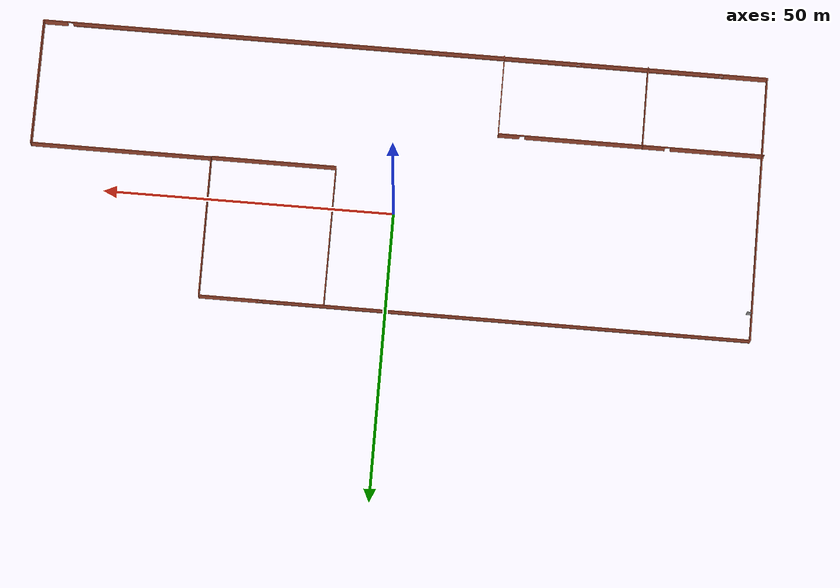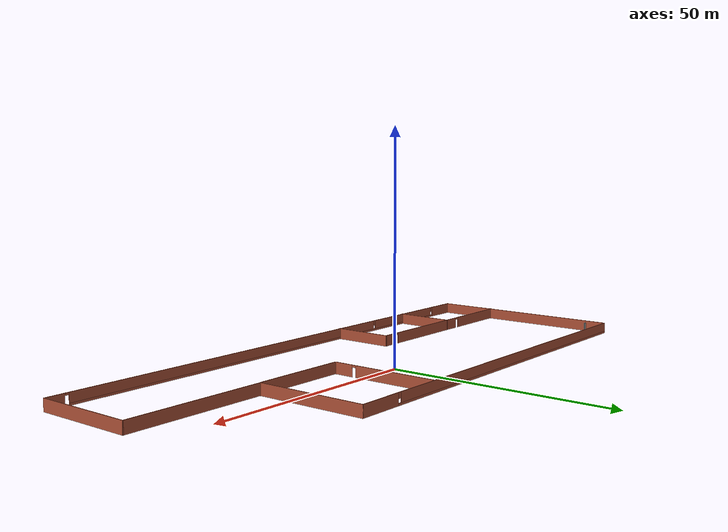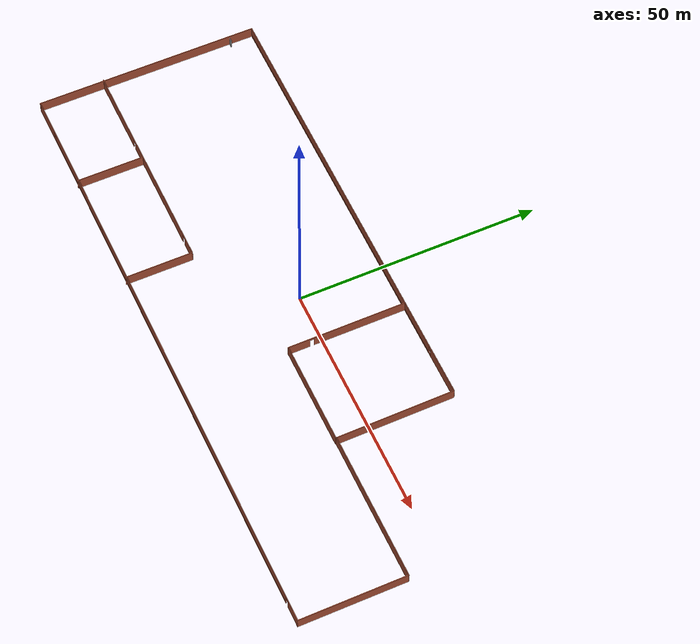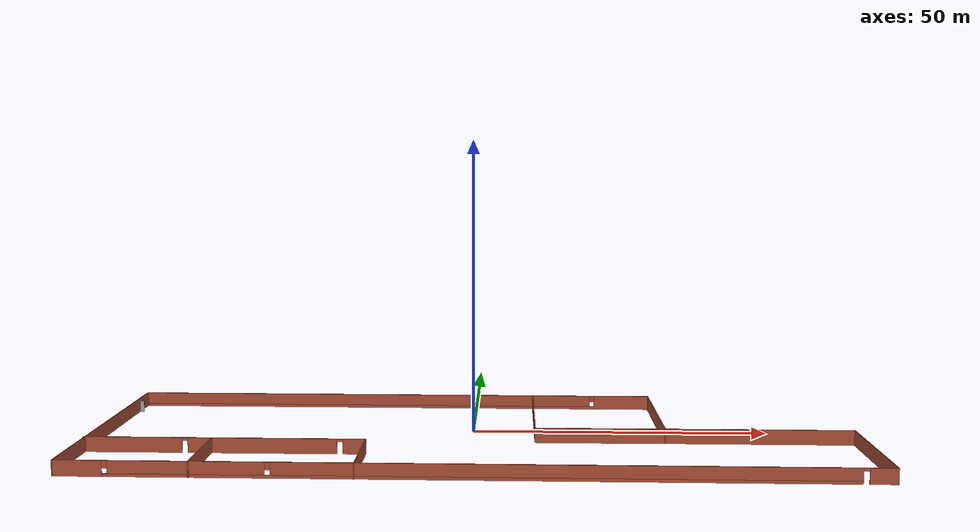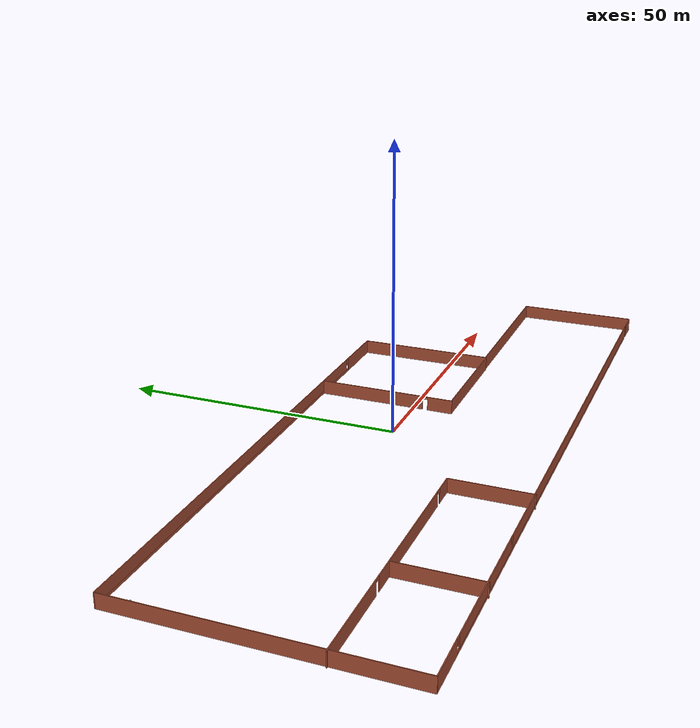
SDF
<?xml version='1.0'?>
<sdf version='1.6'>
  <model name='offi'>
    <pose frame=''>0.300907 -5.8245 0 0 -0 0</pose>
    <link name='Door_3'>
      <collision name='Door_3_Collision'>
        <geometry>
          <box>
            <size>0.9 0.17 2</size>
          </box>
        </geometry>
        <pose frame=''>0 0 1 0 -0 0</pose>
      </collision>
      <visual name='Door_3_Visual'>
        <pose frame=''>0 0 1 0 -0 0</pose>
        <geometry>
          <box>
            <size>0.9 0.17 2</size>
          </box>
        </geometry>
        <material>
          <script>
            <uri>file://media/materials/scripts/gazebo.material</uri>
            <name>Gazebo/Grey</name>
          </script>
        </material>
      </visual>
      <pose frame=''>-62.1497 18.2254 0 0 -0 0</pose>
    </link>
    <link name='Wall_1'>
      <pose frame=''>-15.4952 23.149 0 0 -0 3.14159</pose>
      <visual name='Wall_1_Visual_0'>
        <pose frame=''>-42.0881 0 1.25 0 -0 0</pose>
        <geometry>
          <box>
            <size>10.0738 0.15 2.5</size>
          </box>
        </geometry>
        <material>
          <script>
            <uri>file://media/materials/scripts/gazebo.material</uri>
            <name>Gazebo/Bricks</name>
          </script>
          <ambient>1 1 1 1</ambient>
        </material>
        <meta>
          <layer>0</layer>
        </meta>
      </visual>
      <collision name='Wall_1_Collision_0'>
        <geometry>
          <box>
            <size>10.0738 0.15 2.5</size>
          </box>
        </geometry>
        <pose frame=''>-42.0881 0 1.25 0 -0 0</pose>
      </collision>
      <visual name='Wall_1_Visual_1'>
        <pose frame=''>5.0369 0 0.25 0 -0 0</pose>
        <geometry>
          <box>
            <size>84.1762 0.15 0.5</size>
          </box>
        </geometry>
        <material>
          <script>
            <uri>file://media/materials/scripts/gazebo.material</uri>
            <name>Gazebo/Bricks</name>
          </script>
          <ambient>1 1 1 1</ambient>
        </material>
        <meta>
          <layer>0</layer>
        </meta>
      </visual>
      <collision name='Wall_1_Collision_1'>
        <geometry>
          <box>
            <size>84.1762 0.15 0.5</size>
          </box>
        </geometry>
        <pose frame=''>5.0369 0 0.25 0 -0 0</pose>
      </collision>
      <visual name='Wall_1_Visual_2'>
        <pose frame=''>5.4369 0 1.5 0 -0 0</pose>
        <geometry>
          <box>
            <size>83.3762 0.15 2</size>
          </box>
        </geometry>
        <material>
          <script>
            <uri>file://media/materials/scripts/gazebo.material</uri>
            <name>Gazebo/Bricks</name>
          </script>
          <ambient>1 1 1 1</ambient>
        </material>
        <meta>
          <layer>0</layer>
        </meta>
      </visual>
      <collision name='Wall_1_Collision_2'>
        <geometry>
          <box>
            <size>83.3762 0.15 2</size>
          </box>
        </geometry>
        <pose frame=''>5.4369 0 1.5 0 -0 0</pose>
      </collision>
      <visual name='Wall_1_Visual_3'>
        <pose frame=''>-36.6512 0 1.9 0 -0 0</pose>
        <geometry>
          <box>
            <size>0.8 0.15 1.2</size>
          </box>
        </geometry>
        <material>
          <script>
            <uri>file://media/materials/scripts/gazebo.material</uri>
            <name>Gazebo/Bricks</name>
          </script>
          <ambient>1 1 1 1</ambient>
        </material>
        <meta>
          <layer>0</layer>
        </meta>
      </visual>
      <collision name='Wall_1_Collision_3'>
        <geometry>
          <box>
            <size>0.8 0.15 1.2</size>
          </box>
        </geometry>
        <pose frame=''>-36.6512 0 1.9 0 -0 0</pose>
      </collision>
    </link>
    <link name='Wall_14'>
      <pose frame=''>-29.5298 -9.29942 0 0 -0 0</pose>
      <visual name='Wall_14_Visual_0'>
        <pose frame=''>-2.32675 0 1.25 0 -0 0</pose>
        <geometry>
          <box>
            <size>20.3465 0.15 2.5</size>
          </box>
        </geometry>
        <material>
          <script>
            <uri>file://media/materials/scripts/gazebo.material</uri>
            <name>Gazebo/Bricks</name>
          </script>
          <ambient>1 1 1 1</ambient>
        </material>
        <meta>
          <layer>0</layer>
        </meta>
      </visual>
      <collision name='Wall_14_Collision_0'>
        <geometry>
          <box>
            <size>20.3465 0.15 2.5</size>
          </box>
        </geometry>
        <pose frame=''>-2.32675 0 1.25 0 -0 0</pose>
      </collision>
      <visual name='Wall_14_Visual_1'>
        <pose frame=''>10.6233 0 1.25 0 -0 0</pose>
        <geometry>
          <box>
            <size>3.7535 0.15 2.5</size>
          </box>
        </geometry>
        <material>
          <script>
            <uri>file://media/materials/scripts/gazebo.material</uri>
            <name>Gazebo/Bricks</name>
          </script>
          <ambient>1 1 1 1</ambient>
        </material>
        <meta>
          <layer>0</layer>
        </meta>
      </visual>
      <collision name='Wall_14_Collision_1'>
        <geometry>
          <box>
            <size>3.7535 0.15 2.5</size>
          </box>
        </geometry>
        <pose frame=''>10.6233 0 1.25 0 -0 0</pose>
      </collision>
      <visual name='Wall_14_Visual_2'>
        <pose frame=''>8.2965 0 2.25 0 -0 0</pose>
        <geometry>
          <box>
            <size>0.9 0.15 0.5</size>
          </box>
        </geometry>
        <material>
          <script>
            <uri>file://media/materials/scripts/gazebo.material</uri>
            <name>Gazebo/Bricks</name>
          </script>
          <ambient>1 1 1 1</ambient>
        </material>
        <meta>
          <layer>0</layer>
        </meta>
      </visual>
      <collision name='Wall_14_Collision_2'>
        <geometry>
          <box>
            <size>0.9 0.15 0.5</size>
          </box>
        </geometry>
        <pose frame=''>8.2965 0 2.25 0 -0 0</pose>
      </collision>
    </link>
    <link name='Wall_15'>
      <collision name='Wall_15_Collision'>
        <geometry>
          <box>
            <size>14 0.15 2.5</size>
          </box>
        </geometry>
        <pose frame=''>0 0 1.25 0 -0 0</pose>
      </collision>
      <visual name='Wall_15_Visual'>
        <pose frame=''>0 0 1.25 0 -0 0</pose>
        <geometry>
          <box>
            <size>14 0.15 2.5</size>
          </box>
        </geometry>
        <material>
          <script>
            <uri>file://media/materials/scripts/gazebo.material</uri>
            <name>Gazebo/Bricks</name>
          </script>
          <ambient>1 1 1 1</ambient>
        </material>
        <meta>
          <layer>0</layer>
        </meta>
      </visual>
      <pose frame=''>-17.1048 -16.2244 0 0 0 -1.5708</pose>
    </link>
    <link name='Wall_17'>
      <pose frame=''>10.1813 10.9634 0 0 0 -1.5708</pose>
      <visual name='Wall_17_Visual_0'>
        <pose frame=''>-2.69786 0 1.25 0 -0 0</pose>
        <geometry>
          <box>
            <size>19.1043 0.15 2.5</size>
          </box>
        </geometry>
        <material>
          <script>
            <uri>file://media/materials/scripts/gazebo.material</uri>
            <name>Gazebo/Bricks</name>
          </script>
          <ambient>1 1 1 1</ambient>
        </material>
        <meta>
          <layer>0</layer>
        </meta>
      </visual>
      <collision name='Wall_17_Collision_0'>
        <geometry>
          <box>
            <size>19.1043 0.15 2.5</size>
          </box>
        </geometry>
        <pose frame=''>-2.69786 0 1.25 0 -0 0</pose>
      </collision>
      <visual name='Wall_17_Visual_1'>
        <pose frame=''>10.0021 0 1.25 0 -0 0</pose>
        <geometry>
          <box>
            <size>4.49571 0.15 2.5</size>
          </box>
        </geometry>
        <material>
          <script>
            <uri>file://media/materials/scripts/gazebo.material</uri>
            <name>Gazebo/Bricks</name>
          </script>
          <ambient>1 1 1 1</ambient>
        </material>
        <meta>
          <layer>0</layer>
        </meta>
      </visual>
      <collision name='Wall_17_Collision_1'>
        <geometry>
          <box>
            <size>4.49571 0.15 2.5</size>
          </box>
        </geometry>
        <pose frame=''>10.0021 0 1.25 0 -0 0</pose>
      </collision>
      <visual name='Wall_17_Visual_2'>
        <pose frame=''>7.30429 0 2.25 0 -0 0</pose>
        <geometry>
          <box>
            <size>0.9 0.15 0.5</size>
          </box>
        </geometry>
        <material>
          <script>
            <uri>file://media/materials/scripts/gazebo.material</uri>
            <name>Gazebo/Bricks</name>
          </script>
          <ambient>1 1 1 1</ambient>
        </material>
        <meta>
          <layer>0</layer>
        </meta>
      </visual>
      <collision name='Wall_17_Collision_2'>
        <geometry>
          <box>
            <size>0.9 0.15 0.5</size>
          </box>
        </geometry>
        <pose frame=''>7.30429 0 2.25 0 -0 0</pose>
      </collision>
    </link>
    <link name='Wall_18'>
      <collision name='Wall_18_Collision'>
        <geometry>
          <box>
            <size>21.5 0.15 2.5</size>
          </box>
        </geometry>
        <pose frame=''>0 0 1.25 0 -0 0</pose>
      </collision>
      <visual name='Wall_18_Visual'>
        <pose frame=''>0 0 1.25 0 -0 0</pose>
        <geometry>
          <box>
            <size>21.5 0.15 2.5</size>
          </box>
        </geometry>
        <material>
          <script>
            <uri>file://media/materials/scripts/gazebo.material</uri>
            <name>Gazebo/Bricks</name>
          </script>
          <ambient>1 1 1 1</ambient>
        </material>
        <meta>
          <layer>0</layer>
        </meta>
      </visual>
      <pose frame=''>20.8563 -1.21156 0 0 -0 0</pose>
    </link>
    <link name='Wall_2'>
      <collision name='Wall_2_Collision'>
        <geometry>
          <box>
            <size>46.25 0.15 2.5</size>
          </box>
        </geometry>
        <pose frame=''>0 0 1.25 0 -0 0</pose>
      </collision>
      <visual name='Wall_2_Visual'>
        <pose frame=''>0 0 1.25 0 -0 0</pose>
        <geometry>
          <box>
            <size>46.25 0.15 2.5</size>
          </box>
        </geometry>
        <material>
          <script>
            <uri>file://media/materials/scripts/gazebo.material</uri>
            <name>Gazebo/Bricks</name>
          </script>
          <ambient>1 1 1 1</ambient>
        </material>
        <meta>
          <layer>0</layer>
        </meta>
      </visual>
      <pose frame=''>-62.5452 0.098963 0 0 0 -1.5708</pose>
    </link>
    <link name='Wall_3'>
      <pose frame=''>0.129818 -22.951 0 0 -0 0</pose>
      <visual name='Wall_3_Visual_0'>
        <pose frame=''>-58.9504 0 1.25 0 -0 0</pose>
        <geometry>
          <box>
            <size>7.59913 0.15 2.5</size>
          </box>
        </geometry>
        <material>
          <script>
            <uri>file://media/materials/scripts/gazebo.material</uri>
            <name>Gazebo/Bricks</name>
          </script>
          <ambient>1 1 1 1</ambient>
        </material>
        <meta>
          <layer>0</layer>
        </meta>
      </visual>
      <collision name='Wall_3_Collision_0'>
        <geometry>
          <box>
            <size>7.59913 0.15 2.5</size>
          </box>
        </geometry>
        <pose frame=''>-58.9504 0 1.25 0 -0 0</pose>
      </collision>
      <visual name='Wall_3_Visual_1'>
        <pose frame=''>60.6313 0 1.25 0 -0 0</pose>
        <geometry>
          <box>
            <size>4.23742 0.15 2.5</size>
          </box>
        </geometry>
        <material>
          <script>
            <uri>file://media/materials/scripts/gazebo.material</uri>
            <name>Gazebo/Bricks</name>
          </script>
          <ambient>1 1 1 1</ambient>
        </material>
        <meta>
          <layer>0</layer>
        </meta>
      </visual>
      <collision name='Wall_3_Collision_1'>
        <geometry>
          <box>
            <size>4.23742 0.15 2.5</size>
          </box>
        </geometry>
        <pose frame=''>60.6313 0 1.25 0 -0 0</pose>
      </collision>
      <visual name='Wall_3_Visual_2'>
        <pose frame=''>1.23086 0 0.25 0 -0 0</pose>
        <geometry>
          <box>
            <size>112.763 0.15 0.5</size>
          </box>
        </geometry>
        <material>
          <script>
            <uri>file://media/materials/scripts/gazebo.material</uri>
            <name>Gazebo/Bricks</name>
          </script>
          <ambient>1 1 1 1</ambient>
        </material>
        <meta>
          <layer>0</layer>
        </meta>
      </visual>
      <collision name='Wall_3_Collision_2'>
        <geometry>
          <box>
            <size>112.763 0.15 0.5</size>
          </box>
        </geometry>
        <pose frame=''>1.23086 0 0.25 0 -0 0</pose>
      </collision>
      <visual name='Wall_3_Visual_3'>
        <pose frame=''>-42.476 0 1.5 0 -0 0</pose>
        <geometry>
          <box>
            <size>23.7498 0.15 2</size>
          </box>
        </geometry>
        <material>
          <script>
            <uri>file://media/materials/scripts/gazebo.material</uri>
            <name>Gazebo/Bricks</name>
          </script>
          <ambient>1 1 1 1</ambient>
        </material>
        <meta>
          <layer>0</layer>
        </meta>
      </visual>
      <collision name='Wall_3_Collision_3'>
        <geometry>
          <box>
            <size>23.7498 0.15 2</size>
          </box>
        </geometry>
        <pose frame=''>-42.476 0 1.5 0 -0 0</pose>
      </collision>
      <visual name='Wall_3_Visual_4'>
        <pose frame=''>13.9058 0 1.5 0 -0 0</pose>
        <geometry>
          <box>
            <size>87.4136 0.15 2</size>
          </box>
        </geometry>
        <material>
          <script>
            <uri>file://media/materials/scripts/gazebo.material</uri>
            <name>Gazebo/Bricks</name>
          </script>
          <ambient>1 1 1 1</ambient>
        </material>
        <meta>
          <layer>0</layer>
        </meta>
      </visual>
      <collision name='Wall_3_Collision_4'>
        <geometry>
          <box>
            <size>87.4136 0.15 2</size>
          </box>
        </geometry>
        <pose frame=''>13.9058 0 1.5 0 -0 0</pose>
      </collision>
      <visual name='Wall_3_Visual_5'>
        <pose frame=''>-54.7509 0 1.9 0 -0 0</pose>
        <geometry>
          <box>
            <size>0.8 0.15 1.2</size>
          </box>
        </geometry>
        <material>
          <script>
            <uri>file://media/materials/scripts/gazebo.material</uri>
            <name>Gazebo/Bricks</name>
          </script>
          <ambient>1 1 1 1</ambient>
        </material>
        <meta>
          <layer>0</layer>
        </meta>
      </visual>
      <collision name='Wall_3_Collision_5'>
        <geometry>
          <box>
            <size>0.8 0.15 1.2</size>
          </box>
        </geometry>
        <pose frame=''>-54.7509 0 1.9 0 -0 0</pose>
      </collision>
      <visual name='Wall_3_Visual_6'>
        <pose frame=''>-30.2011 0 1.9 0 -0 0</pose>
        <geometry>
          <box>
            <size>0.8 0.15 1.2</size>
          </box>
        </geometry>
        <material>
          <script>
            <uri>file://media/materials/scripts/gazebo.material</uri>
            <name>Gazebo/Bricks</name>
          </script>
          <ambient>1 1 1 1</ambient>
        </material>
        <meta>
          <layer>0</layer>
        </meta>
      </visual>
      <collision name='Wall_3_Collision_6'>
        <geometry>
          <box>
            <size>0.8 0.15 1.2</size>
          </box>
        </geometry>
        <pose frame=''>-30.2011 0 1.9 0 -0 0</pose>
      </collision>
      <visual name='Wall_3_Visual_7'>
        <pose frame=''>58.0626 0 2.25 0 -0 0</pose>
        <geometry>
          <box>
            <size>0.9 0.15 0.5</size>
          </box>
        </geometry>
        <material>
          <script>
            <uri>file://media/materials/scripts/gazebo.material</uri>
            <name>Gazebo/Bricks</name>
          </script>
          <ambient>1 1 1 1</ambient>
        </material>
        <meta>
          <layer>0</layer>
        </meta>
      </visual>
      <collision name='Wall_3_Collision_7'>
        <geometry>
          <box>
            <size>0.9 0.15 0.5</size>
          </box>
        </geometry>
        <pose frame=''>58.0626 0 2.25 0 -0 0</pose>
      </collision>
    </link>
    <link name='Wall_4'>
      <collision name='Wall_4_Collision'>
        <geometry>
          <box>
            <size>22 0.15 2.5</size>
          </box>
        </geometry>
        <pose frame=''>0 0 1.25 0 -0 0</pose>
      </collision>
      <visual name='Wall_4_Visual'>
        <pose frame=''>0 0 1.25 0 -0 0</pose>
        <geometry>
          <box>
            <size>22 0.15 2.5</size>
          </box>
        </geometry>
        <material>
          <script>
            <uri>file://media/materials/scripts/gazebo.material</uri>
            <name>Gazebo/Bricks</name>
          </script>
          <ambient>1 1 1 1</ambient>
        </material>
        <meta>
          <layer>0</layer>
        </meta>
      </visual>
      <pose frame=''>62.8048 -12.026 0 0 -0 1.5708</pose>
    </link>
    <link name='Wall_5'>
      <collision name='Wall_5_Collision'>
        <geometry>
          <box>
            <size>31.25 0.15 2.5</size>
          </box>
        </geometry>
        <pose frame=''>0 0 1.25 0 -0 0</pose>
      </collision>
      <visual name='Wall_5_Visual'>
        <pose frame=''>0 0 1.25 0 -0 0</pose>
        <geometry>
          <box>
            <size>31.25 0.15 2.5</size>
          </box>
        </geometry>
        <material>
          <script>
            <uri>file://media/materials/scripts/gazebo.material</uri>
            <name>Gazebo/Bricks</name>
          </script>
          <ambient>1 1 1 1</ambient>
        </material>
        <meta>
          <layer>0</layer>
        </meta>
      </visual>
      <pose frame=''>47.2548 -1.10104 0 0 -0 3.14159</pose>
    </link>
    <link name='Wall_6'>
      <collision name='Wall_6_Collision'>
        <geometry>
          <box>
            <size>24.4005 0.15 2.5</size>
          </box>
        </geometry>
        <pose frame=''>0 0 1.25 0 -0 0</pose>
      </collision>
      <visual name='Wall_6_Visual'>
        <pose frame=''>0 0 1.25 0 -0 0</pose>
        <geometry>
          <box>
            <size>24.4005 0.15 2.5</size>
          </box>
        </geometry>
        <material>
          <script>
            <uri>file://media/materials/scripts/gazebo.material</uri>
            <name>Gazebo/Bricks</name>
          </script>
          <ambient>1 1 1 1</ambient>
        </material>
        <meta>
          <layer>0</layer>
        </meta>
      </visual>
      <pose frame=''>31.6298 11.024 0 0 -0 1.57698</pose>
    </link>
    <link name='Wall_8'>
      <pose frame=''>-52.3798 -9.29942 0 0 -0 0</pose>
      <visual name='Wall_8_Visual_0'>
        <pose frame=''>-2.42215 0 1.25 0 -0 0</pose>
        <geometry>
          <box>
            <size>16.1557 0.15 2.5</size>
          </box>
        </geometry>
        <material>
          <script>
            <uri>file://media/materials/scripts/gazebo.material</uri>
            <name>Gazebo/Bricks</name>
          </script>
          <ambient>1 1 1 1</ambient>
        </material>
        <meta>
          <layer>0</layer>
        </meta>
      </visual>
      <collision name='Wall_8_Collision_0'>
        <geometry>
          <box>
            <size>16.1557 0.15 2.5</size>
          </box>
        </geometry>
        <pose frame=''>-2.42215 0 1.25 0 -0 0</pose>
      </collision>
      <visual name='Wall_8_Visual_1'>
        <pose frame=''>8.52785 0 1.25 0 -0 0</pose>
        <geometry>
          <box>
            <size>3.9443 0.15 2.5</size>
          </box>
        </geometry>
        <material>
          <script>
            <uri>file://media/materials/scripts/gazebo.material</uri>
            <name>Gazebo/Bricks</name>
          </script>
          <ambient>1 1 1 1</ambient>
        </material>
        <meta>
          <layer>0</layer>
        </meta>
      </visual>
      <collision name='Wall_8_Collision_1'>
        <geometry>
          <box>
            <size>3.9443 0.15 2.5</size>
          </box>
        </geometry>
        <pose frame=''>8.52785 0 1.25 0 -0 0</pose>
      </collision>
      <visual name='Wall_8_Visual_2'>
        <pose frame=''>6.1057 0 2.25 0 -0 0</pose>
        <geometry>
          <box>
            <size>0.9 0.15 0.5</size>
          </box>
        </geometry>
        <material>
          <script>
            <uri>file://media/materials/scripts/gazebo.material</uri>
            <name>Gazebo/Bricks</name>
          </script>
          <ambient>1 1 1 1</ambient>
        </material>
        <meta>
          <layer>0</layer>
        </meta>
      </visual>
      <collision name='Wall_8_Collision_2'>
        <geometry>
          <box>
            <size>0.9 0.15 0.5</size>
          </box>
        </geometry>
        <pose frame=''>6.1057 0 2.25 0 -0 0</pose>
      </collision>
    </link>
    <link name='Wall_9'>
      <collision name='Wall_9_Collision'>
        <geometry>
          <box>
            <size>14 0.15 2.5</size>
          </box>
        </geometry>
        <pose frame=''>0 0 1.25 0 -0 0</pose>
      </collision>
      <visual name='Wall_9_Visual'>
        <pose frame=''>0 0 1.25 0 -0 0</pose>
        <geometry>
          <box>
            <size>14 0.15 2.5</size>
          </box>
        </geometry>
        <material>
          <script>
            <uri>file://media/materials/scripts/gazebo.material</uri>
            <name>Gazebo/Bricks</name>
          </script>
          <ambient>1 1 1 1</ambient>
        </material>
        <meta>
          <layer>0</layer>
        </meta>
      </visual>
      <pose frame=''>-41.9548 -16.2244 0 0 0 -1.5708</pose>
    </link>
    <static>1</static>
  </model>
</sdf>
